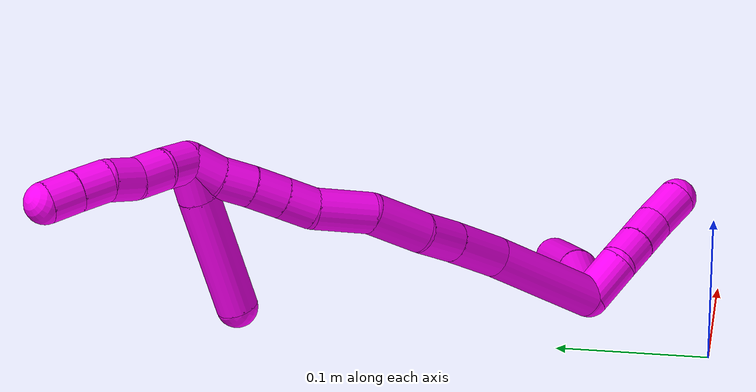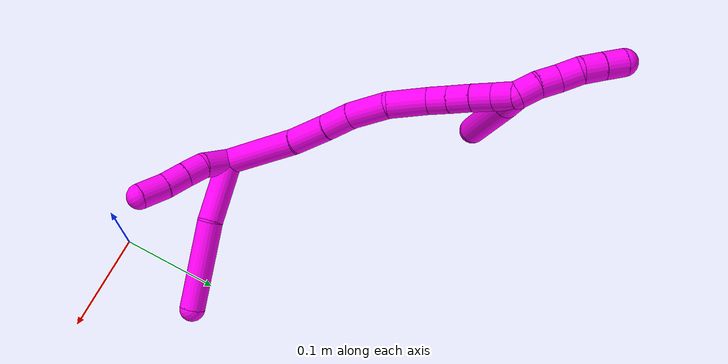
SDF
<sdf version="1.7">
 <world name="default">
  <model name="10">
   <static>0</static>
   <link name="10">
    <collision name="collision-cylinder-e_1_2_8">
     <pose>0.023339 0.011251 -0.017123 -2.56024 0.850349 -1.97391</pose>
     <geometry><cylinder><radius>0.0125</radius><length>0.062113</length></cylinder></geometry>
     <surface>
      <friction><ode><mu>1.16</mu><mu2>1.16</mu2><slip1>0</slip1><slip2>0</slip2></ode></friction>
      <contact><ode><kp>1e+06</kp><kd>1</kd><max_vel>0</max_vel><min_depth>0.001</min_depth></ode></contact>
     </surface>
    </collision>
    <visual name="visual-cylinder-e_1_2_8">
     <pose>0.023339 0.011251 -0.017123 -2.56024 0.850349 -1.97391</pose>
     <geometry><cylinder><radius>0.0125</radius><length>0.062113</length></cylinder></geometry>
     <material><ambient>1 0 0.964706 1</ambient></material>
    </visual>
    <collision name="collision-cylinder-e_2_8_6">
     <pose>0.074282 0.045495 -0.059553 -2.40411 0.679172 -1.48124</pose>
     <geometry><cylinder><radius>0.0125</radius><length>0.087887</length></cylinder></geometry>
     <surface>
      <friction><ode><mu>1.16</mu><mu2>1.16</mu2><slip1>0</slip1><slip2>0</slip2></ode></friction>
      <contact><ode><kp>1e+06</kp><kd>1</kd><max_vel>0</max_vel><min_depth>0.001</min_depth></ode></contact>
     </surface>
    </collision>
    <visual name="visual-cylinder-e_2_8_6">
     <pose>0.074282 0.045495 -0.059553 -2.40411 0.679172 -1.48124</pose>
     <geometry><cylinder><radius>0.0125</radius><length>0.087887</length></cylinder></geometry>
     <material><ambient>1 0 0.964706 1</ambient></material>
    </visual>
    <collision name="collision-cylinder-e_1_2_9">
     <pose>0.00872 -0.009925 -0.006586 2.15663 0.631934 1.09441</pose>
     <geometry><cylinder><radius>0.0125</radius><length>0.029525</length></cylinder></geometry>
     <surface>
      <friction><ode><mu>1.16</mu><mu2>1.16</mu2><slip1>0</slip1><slip2>0</slip2></ode></friction>
      <contact><ode><kp>1e+06</kp><kd>1</kd><max_vel>0</max_vel><min_depth>0.001</min_depth></ode></contact>
     </surface>
    </collision>
    <visual name="visual-cylinder-e_1_2_9">
     <pose>0.00872 -0.009925 -0.006586 2.15663 0.631934 1.09441</pose>
     <geometry><cylinder><radius>0.0125</radius><length>0.029525</length></cylinder></geometry>
     <material><ambient>1 0 0.964706 1</ambient></material>
    </visual>
    <collision name="collision-cylinder-e_2_9_10">
     <pose>0.024397 -0.023997 -0.019883 2.58818 0.722716 1.85282</pose>
     <geometry><cylinder><radius>0.0125</radius><length>0.021036</length></cylinder></geometry>
     <surface>
      <friction><ode><mu>1.16</mu><mu2>1.16</mu2><slip1>0</slip1><slip2>0</slip2></ode></friction>
      <contact><ode><kp>1e+06</kp><kd>1</kd><max_vel>0</max_vel><min_depth>0.001</min_depth></ode></contact>
     </surface>
    </collision>
    <visual name="visual-cylinder-e_2_9_10">
     <pose>0.024397 -0.023997 -0.019883 2.58818 0.722716 1.85282</pose>
     <geometry><cylinder><radius>0.0125</radius><length>0.021036</length></cylinder></geometry>
     <material><ambient>1 0 0.964706 1</ambient></material>
    </visual>
    <collision name="collision-cylinder-e_3_10_11">
     <pose>0.038876 -0.032245 -0.033792 2.62362 0.737148 1.93911</pose>
     <geometry><cylinder><radius>0.0125</radius><length>0.022379</length></cylinder></geometry>
     <surface>
      <friction><ode><mu>1.16</mu><mu2>1.16</mu2><slip1>0</slip1><slip2>0</slip2></ode></friction>
      <contact><ode><kp>1e+06</kp><kd>1</kd><max_vel>0</max_vel><min_depth>0.001</min_depth></ode></contact>
     </surface>
    </collision>
    <visual name="visual-cylinder-e_3_10_11">
     <pose>0.038876 -0.032245 -0.033792 2.62362 0.737148 1.93911</pose>
     <geometry><cylinder><radius>0.0125</radius><length>0.022379</length></cylinder></geometry>
     <material><ambient>1 0 0.964706 1</ambient></material>
    </visual>
    <collision name="collision-cylinder-e_4_11_5">
     <pose>0.054835 -0.042746 -0.04941 2.49173 0.673415 1.60912</pose>
     <geometry><cylinder><radius>0.0125</radius><length>0.02706</length></cylinder></geometry>
     <surface>
      <friction><ode><mu>1.16</mu><mu2>1.16</mu2><slip1>0</slip1><slip2>0</slip2></ode></friction>
      <contact><ode><kp>1e+06</kp><kd>1</kd><max_vel>0</max_vel><min_depth>0.001</min_depth></ode></contact>
     </surface>
    </collision>
    <visual name="visual-cylinder-e_4_11_5">
     <pose>0.054835 -0.042746 -0.04941 2.49173 0.673415 1.60912</pose>
     <geometry><cylinder><radius>0.0125</radius><length>0.02706</length></cylinder></geometry>
     <material><ambient>1 0 0.964706 1</ambient></material>
    </visual>
    <collision name="collision-cylinder-e_1_2_12">
     <pose>0.005729 0.003648 0.038321 -0.094919 0.147736 -0.00703</pose>
     <geometry><cylinder><radius>0.0125</radius><length>0.077837</length></cylinder></geometry>
     <surface>
      <friction><ode><mu>1.16</mu><mu2>1.16</mu2><slip1>0</slip1><slip2>0</slip2></ode></friction>
      <contact><ode><kp>1e+06</kp><kd>1</kd><max_vel>0</max_vel><min_depth>0.001</min_depth></ode></contact>
     </surface>
    </collision>
    <visual name="visual-cylinder-e_1_2_12">
     <pose>0.005729 0.003648 0.038321 -0.094919 0.147736 -0.00703</pose>
     <geometry><cylinder><radius>0.0125</radius><length>0.077837</length></cylinder></geometry>
     <material><ambient>1 0 0.964706 1</ambient></material>
    </visual>
    <collision name="collision-cylinder-e_2_12_13">
     <pose>0.01193 0.008341 0.095008 -0.056799 0.025669 -0.000729</pose>
     <geometry><cylinder><radius>0.0125</radius><length>0.036802</length></cylinder></geometry>
     <surface>
      <friction><ode><mu>1.16</mu><mu2>1.16</mu2><slip1>0</slip1><slip2>0</slip2></ode></friction>
      <contact><ode><kp>1e+06</kp><kd>1</kd><max_vel>0</max_vel><min_depth>0.001</min_depth></ode></contact>
     </surface>
    </collision>
    <visual name="visual-cylinder-e_2_12_13">
     <pose>0.01193 0.008341 0.095008 -0.056799 0.025669 -0.000729</pose>
     <geometry><cylinder><radius>0.0125</radius><length>0.036802</length></cylinder></geometry>
     <material><ambient>1 0 0.964706 1</ambient></material>
    </visual>
    <collision name="collision-cylinder-e_3_13_14">
     <pose>0.011992 0.010139 0.126873 -0.055772 -0.030344 0.000846</pose>
     <geometry><cylinder><radius>0.0125</radius><length>0.027053</length></cylinder></geometry>
     <surface>
      <friction><ode><mu>1.16</mu><mu2>1.16</mu2><slip1>0</slip1><slip2>0</slip2></ode></friction>
      <contact><ode><kp>1e+06</kp><kd>1</kd><max_vel>0</max_vel><min_depth>0.001</min_depth></ode></contact>
     </surface>
    </collision>
    <visual name="visual-cylinder-e_3_13_14">
     <pose>0.011992 0.010139 0.126873 -0.055772 -0.030344 0.000846</pose>
     <geometry><cylinder><radius>0.0125</radius><length>0.027053</length></cylinder></geometry>
     <material><ambient>1 0 0.964706 1</ambient></material>
    </visual>
    <collision name="collision-cylinder-e_4_14_15">
     <pose>0.01414 0.013339 0.159267 -0.128781 0.133502 -0.008621</pose>
     <geometry><cylinder><radius>0.0125</radius><length>0.038447</length></cylinder></geometry>
     <surface>
      <friction><ode><mu>1.16</mu><mu2>1.16</mu2><slip1>0</slip1><slip2>0</slip2></ode></friction>
      <contact><ode><kp>1e+06</kp><kd>1</kd><max_vel>0</max_vel><min_depth>0.001</min_depth></ode></contact>
     </surface>
    </collision>
    <visual name="visual-cylinder-e_4_14_15">
     <pose>0.01414 0.013339 0.159267 -0.128781 0.133502 -0.008621</pose>
     <geometry><cylinder><radius>0.0125</radius><length>0.038447</length></cylinder></geometry>
     <material><ambient>1 0 0.964706 1</ambient></material>
    </visual>
    <collision name="collision-cylinder-e_5_15_16">
     <pose>0.017572 0.023207 0.195378 -0.406956 0.046531 -0.009603</pose>
     <geometry><cylinder><radius>0.0125</radius><length>0.037535</length></cylinder></geometry>
     <surface>
      <friction><ode><mu>1.16</mu><mu2>1.16</mu2><slip1>0</slip1><slip2>0</slip2></ode></friction>
      <contact><ode><kp>1e+06</kp><kd>1</kd><max_vel>0</max_vel><min_depth>0.001</min_depth></ode></contact>
     </surface>
    </collision>
    <visual name="visual-cylinder-e_5_15_16">
     <pose>0.017572 0.023207 0.195378 -0.406956 0.046531 -0.009603</pose>
     <geometry><cylinder><radius>0.0125</radius><length>0.037535</length></cylinder></geometry>
     <material><ambient>1 0 0.964706 1</ambient></material>
    </visual>
    <collision name="collision-cylinder-e_6_16_17">
     <pose>0.021094 0.033313 0.221937 -0.279882 0.266054 -0.037695</pose>
     <geometry><cylinder><radius>0.0125</radius><length>0.020152</length></cylinder></geometry>
     <surface>
      <friction><ode><mu>1.16</mu><mu2>1.16</mu2><slip1>0</slip1><slip2>0</slip2></ode></friction>
      <contact><ode><kp>1e+06</kp><kd>1</kd><max_vel>0</max_vel><min_depth>0.001</min_depth></ode></contact>
     </surface>
    </collision>
    <visual name="visual-cylinder-e_6_16_17">
     <pose>0.021094 0.033313 0.221937 -0.279882 0.266054 -0.037695</pose>
     <geometry><cylinder><radius>0.0125</radius><length>0.020152</length></cylinder></geometry>
     <material><ambient>1 0 0.964706 1</ambient></material>
    </visual>
    <collision name="collision-cylinder-e_7_17_18">
     <pose>0.026396 0.038789 0.241079 -0.277472 0.254751 -0.035761</pose>
     <geometry><cylinder><radius>0.0125</radius><length>0.021054</length></cylinder></geometry>
     <surface>
      <friction><ode><mu>1.16</mu><mu2>1.16</mu2><slip1>0</slip1><slip2>0</slip2></ode></friction>
      <contact><ode><kp>1e+06</kp><kd>1</kd><max_vel>0</max_vel><min_depth>0.001</min_depth></ode></contact>
     </surface>
    </collision>
    <visual name="visual-cylinder-e_7_17_18">
     <pose>0.026396 0.038789 0.241079 -0.277472 0.254751 -0.035761</pose>
     <geometry><cylinder><radius>0.0125</radius><length>0.021054</length></cylinder></geometry>
     <material><ambient>1 0 0.964706 1</ambient></material>
    </visual>
    <collision name="collision-cylinder-e_8_18_19">
     <pose>0.031383 0.04478 0.260287 -0.327857 0.230602 -0.03831</pose>
     <geometry><cylinder><radius>0.0125</radius><length>0.02042</length></cylinder></geometry>
     <surface>
      <friction><ode><mu>1.16</mu><mu2>1.16</mu2><slip1>0</slip1><slip2>0</slip2></ode></friction>
      <contact><ode><kp>1e+06</kp><kd>1</kd><max_vel>0</max_vel><min_depth>0.001</min_depth></ode></contact>
     </surface>
    </collision>
    <visual name="visual-cylinder-e_8_18_19">
     <pose>0.031383 0.04478 0.260287 -0.327857 0.230602 -0.03831</pose>
     <geometry><cylinder><radius>0.0125</radius><length>0.02042</length></cylinder></geometry>
     <material><ambient>1 0 0.964706 1</ambient></material>
    </visual>
    <collision name="collision-cylinder-e_9_19_1">
     <pose>0.037333 0.050014 0.279178 -0.211178 0.356934 -0.038231</pose>
     <geometry><cylinder><radius>0.0125</radius><length>0.020698</length></cylinder></geometry>
     <surface>
      <friction><ode><mu>1.16</mu><mu2>1.16</mu2><slip1>0</slip1><slip2>0</slip2></ode></friction>
      <contact><ode><kp>1e+06</kp><kd>1</kd><max_vel>0</max_vel><min_depth>0.001</min_depth></ode></contact>
     </surface>
    </collision>
    <visual name="visual-cylinder-e_9_19_1">
     <pose>0.037333 0.050014 0.279178 -0.211178 0.356934 -0.038231</pose>
     <geometry><cylinder><radius>0.0125</radius><length>0.020698</length></cylinder></geometry>
     <material><ambient>1 0 0.964706 1</ambient></material>
    </visual>
    <collision name="collision-cylinder-e_1_1_20">
     <pose>0.035081 0.057926 0.280489 -2.5178 -0.527734 1.39489</pose>
     <geometry><cylinder><radius>0.0125</radius><length>0.023303</length></cylinder></geometry>
     <surface>
      <friction><ode><mu>1.16</mu><mu2>1.16</mu2><slip1>0</slip1><slip2>0</slip2></ode></friction>
      <contact><ode><kp>1e+06</kp><kd>1</kd><max_vel>0</max_vel><min_depth>0.001</min_depth></ode></contact>
     </surface>
    </collision>
    <visual name="visual-cylinder-e_1_1_20">
     <pose>0.035081 0.057926 0.280489 -2.5178 -0.527734 1.39489</pose>
     <geometry><cylinder><radius>0.0125</radius><length>0.023303</length></cylinder></geometry>
     <material><ambient>1 0 0.964706 1</ambient></material>
    </visual>
    <collision name="collision-cylinder-e_2_20_4">
     <pose>0.00983 0.081961 0.244655 -2.56083 -0.529929 1.47447</pose>
     <geometry><cylinder><radius>0.0125</radius><length>0.076697</length></cylinder></geometry>
     <surface>
      <friction><ode><mu>1.16</mu><mu2>1.16</mu2><slip1>0</slip1><slip2>0</slip2></ode></friction>
      <contact><ode><kp>1e+06</kp><kd>1</kd><max_vel>0</max_vel><min_depth>0.001</min_depth></ode></contact>
     </surface>
    </collision>
    <visual name="visual-cylinder-e_2_20_4">
     <pose>0.00983 0.081961 0.244655 -2.56083 -0.529929 1.47447</pose>
     <geometry><cylinder><radius>0.0125</radius><length>0.076697</length></cylinder></geometry>
     <material><ambient>1 0 0.964706 1</ambient></material>
    </visual>
    <collision name="collision-cylinder-e_1_1_21">
     <pose>0.037041 0.054515 0.297528 -0.271507 -0.401416 0.055565</pose>
     <geometry><cylinder><radius>0.0125</radius><length>0.02</length></cylinder></geometry>
     <surface>
      <friction><ode><mu>1.16</mu><mu2>1.16</mu2><slip1>0</slip1><slip2>0</slip2></ode></friction>
      <contact><ode><kp>1e+06</kp><kd>1</kd><max_vel>0</max_vel><min_depth>0.001</min_depth></ode></contact>
     </surface>
    </collision>
    <visual name="visual-cylinder-e_1_1_21">
     <pose>0.037041 0.054515 0.297528 -0.271507 -0.401416 0.055565</pose>
     <geometry><cylinder><radius>0.0125</radius><length>0.02</length></cylinder></geometry>
     <material><ambient>1 0 0.964706 1</ambient></material>
    </visual>
    <collision name="collision-cylinder-e_2_21_22">
     <pose>0.029588 0.061246 0.314718 -0.473392 -0.362489 0.088351</pose>
     <geometry><cylinder><radius>0.0125</radius><length>0.02</length></cylinder></geometry>
     <surface>
      <friction><ode><mu>1.16</mu><mu2>1.16</mu2><slip1>0</slip1><slip2>0</slip2></ode></friction>
      <contact><ode><kp>1e+06</kp><kd>1</kd><max_vel>0</max_vel><min_depth>0.001</min_depth></ode></contact>
     </surface>
    </collision>
    <visual name="visual-cylinder-e_2_21_22">
     <pose>0.029588 0.061246 0.314718 -0.473392 -0.362489 0.088351</pose>
     <geometry><cylinder><radius>0.0125</radius><length>0.02</length></cylinder></geometry>
     <material><ambient>1 0 0.964706 1</ambient></material>
    </visual>
    <collision name="collision-cylinder-e_3_22_23">
     <pose>0.024061 0.068166 0.332474 -0.274522 -0.199406 0.027634</pose>
     <geometry><cylinder><radius>0.0125</radius><length>0.02</length></cylinder></geometry>
     <surface>
      <friction><ode><mu>1.16</mu><mu2>1.16</mu2><slip1>0</slip1><slip2>0</slip2></ode></friction>
      <contact><ode><kp>1e+06</kp><kd>1</kd><max_vel>0</max_vel><min_depth>0.001</min_depth></ode></contact>
     </surface>
    </collision>
    <visual name="visual-cylinder-e_3_22_23">
     <pose>0.024061 0.068166 0.332474 -0.274522 -0.199406 0.027634</pose>
     <geometry><cylinder><radius>0.0125</radius><length>0.02</length></cylinder></geometry>
     <material><ambient>1 0 0.964706 1</ambient></material>
    </visual>
    <collision name="collision-cylinder-e_4_23_24">
     <pose>0.019023 0.075995 0.349904 -0.574155 -0.310675 0.0924</pose>
     <geometry><cylinder><radius>0.0125</radius><length>0.02</length></cylinder></geometry>
     <surface>
      <friction><ode><mu>1.16</mu><mu2>1.16</mu2><slip1>0</slip1><slip2>0</slip2></ode></friction>
      <contact><ode><kp>1e+06</kp><kd>1</kd><max_vel>0</max_vel><min_depth>0.001</min_depth></ode></contact>
     </surface>
    </collision>
    <visual name="visual-cylinder-e_4_23_24">
     <pose>0.019023 0.075995 0.349904 -0.574155 -0.310675 0.0924</pose>
     <geometry><cylinder><radius>0.0125</radius><length>0.02</length></cylinder></geometry>
     <material><ambient>1 0 0.964706 1</ambient></material>
    </visual>
    <collision name="collision-cylinder-e_5_24_3">
     <pose>0.012799 0.086554 0.365704 -0.604183 -0.322329 0.101239</pose>
     <geometry><cylinder><radius>0.0125</radius><length>0.02</length></cylinder></geometry>
     <surface>
      <friction><ode><mu>1.16</mu><mu2>1.16</mu2><slip1>0</slip1><slip2>0</slip2></ode></friction>
      <contact><ode><kp>1e+06</kp><kd>1</kd><max_vel>0</max_vel><min_depth>0.001</min_depth></ode></contact>
     </surface>
    </collision>
    <visual name="visual-cylinder-e_5_24_3">
     <pose>0.012799 0.086554 0.365704 -0.604183 -0.322329 0.101239</pose>
     <geometry><cylinder><radius>0.0125</radius><length>0.02</length></cylinder></geometry>
     <material><ambient>1 0 0.964706 1</ambient></material>
    </visual>
    <collision name="collision-sphere-3">
     <pose>0.009631 0.091943 0.37351 0 -0 0</pose>
     <geometry><sphere><radius>0.0125</radius></sphere></geometry>
     <surface>
      <friction><ode><mu>1.16</mu><mu2>1.16</mu2><slip1>0</slip1><slip2>0</slip2></ode></friction>
      <contact><ode><kp>1e+06</kp><kd>1</kd><max_vel>0</max_vel><min_depth>0.001</min_depth></ode></contact>
     </surface>
    </collision>
    <visual name="visual-sphere-3">
     <pose>0.009631 0.091943 0.37351 0 -0 0</pose>
     <geometry><sphere><radius>0.0125</radius></sphere></geometry>
     <material><ambient>1 0 0.964706 1</ambient></material>
    </visual>
    <collision name="collision-sphere-24">
     <pose>0.015966 0.081166 0.357898 0 -0 0</pose>
     <geometry><sphere><radius>0.0125</radius></sphere></geometry>
     <surface>
      <friction><ode><mu>1.16</mu><mu2>1.16</mu2><slip1>0</slip1><slip2>0</slip2></ode></friction>
      <contact><ode><kp>1e+06</kp><kd>1</kd><max_vel>0</max_vel><min_depth>0.001</min_depth></ode></contact>
     </surface>
    </collision>
    <visual name="visual-sphere-24">
     <pose>0.015966 0.081166 0.357898 0 -0 0</pose>
     <geometry><sphere><radius>0.0125</radius></sphere></geometry>
     <material><ambient>1 0 0.964706 1</ambient></material>
    </visual>
    <collision name="collision-sphere-23">
     <pose>0.02208 0.070823 0.341909 0 -0 0</pose>
     <geometry><sphere><radius>0.0125</radius></sphere></geometry>
     <surface>
      <friction><ode><mu>1.16</mu><mu2>1.16</mu2><slip1>0</slip1><slip2>0</slip2></ode></friction>
      <contact><ode><kp>1e+06</kp><kd>1</kd><max_vel>0</max_vel><min_depth>0.001</min_depth></ode></contact>
     </surface>
    </collision>
    <visual name="visual-sphere-23">
     <pose>0.02208 0.070823 0.341909 0 -0 0</pose>
     <geometry><sphere><radius>0.0125</radius></sphere></geometry>
     <material><ambient>1 0 0.964706 1</ambient></material>
    </visual>
    <collision name="collision-sphere-22">
     <pose>0.026042 0.065509 0.323039 0 -0 0</pose>
     <geometry><sphere><radius>0.0125</radius></sphere></geometry>
     <surface>
      <friction><ode><mu>1.16</mu><mu2>1.16</mu2><slip1>0</slip1><slip2>0</slip2></ode></friction>
      <contact><ode><kp>1e+06</kp><kd>1</kd><max_vel>0</max_vel><min_depth>0.001</min_depth></ode></contact>
     </surface>
    </collision>
    <visual name="visual-sphere-22">
     <pose>0.026042 0.065509 0.323039 0 -0 0</pose>
     <geometry><sphere><radius>0.0125</radius></sphere></geometry>
     <material><ambient>1 0 0.964706 1</ambient></material>
    </visual>
    <collision name="collision-sphere-21">
     <pose>0.033134 0.056984 0.306396 0 -0 0</pose>
     <geometry><sphere><radius>0.0125</radius></sphere></geometry>
     <surface>
      <friction><ode><mu>1.16</mu><mu2>1.16</mu2><slip1>0</slip1><slip2>0</slip2></ode></friction>
      <contact><ode><kp>1e+06</kp><kd>1</kd><max_vel>0</max_vel><min_depth>0.001</min_depth></ode></contact>
     </surface>
    </collision>
    <visual name="visual-sphere-21">
     <pose>0.033134 0.056984 0.306396 0 -0 0</pose>
     <geometry><sphere><radius>0.0125</radius></sphere></geometry>
     <material><ambient>1 0 0.964706 1</ambient></material>
    </visual>
    <collision name="collision-sphere-4">
     <pose>-0.009554 0.100115 0.216992 0 -0 0</pose>
     <geometry><sphere><radius>0.0125</radius></sphere></geometry>
     <surface>
      <friction><ode><mu>1.16</mu><mu2>1.16</mu2><slip1>0</slip1><slip2>0</slip2></ode></friction>
      <contact><ode><kp>1e+06</kp><kd>1</kd><max_vel>0</max_vel><min_depth>0.001</min_depth></ode></contact>
     </surface>
    </collision>
    <visual name="visual-sphere-4">
     <pose>-0.009554 0.100115 0.216992 0 -0 0</pose>
     <geometry><sphere><radius>0.0125</radius></sphere></geometry>
     <material><ambient>1 0 0.964706 1</ambient></material>
    </visual>
    <collision name="collision-sphere-20">
     <pose>0.029214 0.063806 0.272319 0 -0 0</pose>
     <geometry><sphere><radius>0.0125</radius></sphere></geometry>
     <surface>
      <friction><ode><mu>1.16</mu><mu2>1.16</mu2><slip1>0</slip1><slip2>0</slip2></ode></friction>
      <contact><ode><kp>1e+06</kp><kd>1</kd><max_vel>0</max_vel><min_depth>0.001</min_depth></ode></contact>
     </surface>
    </collision>
    <visual name="visual-sphere-20">
     <pose>0.029214 0.063806 0.272319 0 -0 0</pose>
     <geometry><sphere><radius>0.0125</radius></sphere></geometry>
     <material><ambient>1 0 0.964706 1</ambient></material>
    </visual>
    <collision name="collision-sphere-11">
     <pose>0.046397 -0.036347 -0.04099 0 -0 0</pose>
     <geometry><sphere><radius>0.0125</radius></sphere></geometry>
     <surface>
      <friction><ode><mu>1.16</mu><mu2>1.16</mu2><slip1>0</slip1><slip2>0</slip2></ode></friction>
      <contact><ode><kp>1e+06</kp><kd>1</kd><max_vel>0</max_vel><min_depth>0.001</min_depth></ode></contact>
     </surface>
    </collision>
    <visual name="visual-sphere-11">
     <pose>0.046397 -0.036347 -0.04099 0 -0 0</pose>
     <geometry><sphere><radius>0.0125</radius></sphere></geometry>
     <material><ambient>1 0 0.964706 1</ambient></material>
    </visual>
    <collision name="collision-sphere-10">
     <pose>0.031354 -0.028143 -0.026594 0 -0 0</pose>
     <geometry><sphere><radius>0.0125</radius></sphere></geometry>
     <surface>
      <friction><ode><mu>1.16</mu><mu2>1.16</mu2><slip1>0</slip1><slip2>0</slip2></ode></friction>
      <contact><ode><kp>1e+06</kp><kd>1</kd><max_vel>0</max_vel><min_depth>0.001</min_depth></ode></contact>
     </surface>
    </collision>
    <visual name="visual-sphere-10">
     <pose>0.031354 -0.028143 -0.026594 0 -0 0</pose>
     <geometry><sphere><radius>0.0125</radius></sphere></geometry>
     <material><ambient>1 0 0.964706 1</ambient></material>
    </visual>
    <collision name="collision-sphere-6">
     <pose>0.101885 0.068486 -0.084861 0 -0 0</pose>
     <geometry><sphere><radius>0.0125</radius></sphere></geometry>
     <surface>
      <friction><ode><mu>1.16</mu><mu2>1.16</mu2><slip1>0</slip1><slip2>0</slip2></ode></friction>
      <contact><ode><kp>1e+06</kp><kd>1</kd><max_vel>0</max_vel><min_depth>0.001</min_depth></ode></contact>
     </surface>
    </collision>
    <visual name="visual-sphere-6">
     <pose>0.101885 0.068486 -0.084861 0 -0 0</pose>
     <geometry><sphere><radius>0.0125</radius></sphere></geometry>
     <material><ambient>1 0 0.964706 1</ambient></material>
    </visual>
    <collision name="collision-sphere-9">
     <pose>0.01744 -0.019851 -0.013172 0 -0 0</pose>
     <geometry><sphere><radius>0.0125</radius></sphere></geometry>
     <surface>
      <friction><ode><mu>1.16</mu><mu2>1.16</mu2><slip1>0</slip1><slip2>0</slip2></ode></friction>
      <contact><ode><kp>1e+06</kp><kd>1</kd><max_vel>0</max_vel><min_depth>0.001</min_depth></ode></contact>
     </surface>
    </collision>
    <visual name="visual-sphere-9">
     <pose>0.01744 -0.019851 -0.013172 0 -0 0</pose>
     <geometry><sphere><radius>0.0125</radius></sphere></geometry>
     <material><ambient>1 0 0.964706 1</ambient></material>
    </visual>
    <collision name="collision-sphere-2">
     <geometry><sphere><radius>0.0125</radius></sphere></geometry>
     <surface>
      <friction><ode><mu>1.16</mu><mu2>1.16</mu2><slip1>0</slip1><slip2>0</slip2></ode></friction>
      <contact><ode><kp>1e+06</kp><kd>1</kd><max_vel>0</max_vel><min_depth>0.001</min_depth></ode></contact>
     </surface>
    </collision>
    <visual name="visual-sphere-2">
     <geometry><sphere><radius>0.0125</radius></sphere></geometry>
     <material><ambient>1 0 0.964706 1</ambient></material>
    </visual>
    <collision name="collision-sphere-19">
     <pose>0.033717 0.047981 0.269697 0 -0 0</pose>
     <geometry><sphere><radius>0.0125</radius></sphere></geometry>
     <surface>
      <friction><ode><mu>1.16</mu><mu2>1.16</mu2><slip1>0</slip1><slip2>0</slip2></ode></friction>
      <contact><ode><kp>1e+06</kp><kd>1</kd><max_vel>0</max_vel><min_depth>0.001</min_depth></ode></contact>
     </surface>
    </collision>
    <visual name="visual-sphere-19">
     <pose>0.033717 0.047981 0.269697 0 -0 0</pose>
     <geometry><sphere><radius>0.0125</radius></sphere></geometry>
     <material><ambient>1 0 0.964706 1</ambient></material>
    </visual>
    <collision name="collision-sphere-8">
     <pose>0.046679 0.022503 -0.034246 0 -0 0</pose>
     <geometry><sphere><radius>0.0125</radius></sphere></geometry>
     <surface>
      <friction><ode><mu>1.16</mu><mu2>1.16</mu2><slip1>0</slip1><slip2>0</slip2></ode></friction>
      <contact><ode><kp>1e+06</kp><kd>1</kd><max_vel>0</max_vel><min_depth>0.001</min_depth></ode></contact>
     </surface>
    </collision>
    <visual name="visual-sphere-8">
     <pose>0.046679 0.022503 -0.034246 0 -0 0</pose>
     <geometry><sphere><radius>0.0125</radius></sphere></geometry>
     <material><ambient>1 0 0.964706 1</ambient></material>
    </visual>
    <collision name="collision-sphere-5">
     <pose>0.063273 -0.049146 -0.057831 0 -0 0</pose>
     <geometry><sphere><radius>0.0125</radius></sphere></geometry>
     <surface>
      <friction><ode><mu>1.16</mu><mu2>1.16</mu2><slip1>0</slip1><slip2>0</slip2></ode></friction>
      <contact><ode><kp>1e+06</kp><kd>1</kd><max_vel>0</max_vel><min_depth>0.001</min_depth></ode></contact>
     </surface>
    </collision>
    <visual name="visual-sphere-5">
     <pose>0.063273 -0.049146 -0.057831 0 -0 0</pose>
     <geometry><sphere><radius>0.0125</radius></sphere></geometry>
     <material><ambient>1 0 0.964706 1</ambient></material>
    </visual>
    <collision name="collision-sphere-12">
     <pose>0.011458 0.007297 0.076643 0 -0 0</pose>
     <geometry><sphere><radius>0.0125</radius></sphere></geometry>
     <surface>
      <friction><ode><mu>1.16</mu><mu2>1.16</mu2><slip1>0</slip1><slip2>0</slip2></ode></friction>
      <contact><ode><kp>1e+06</kp><kd>1</kd><max_vel>0</max_vel><min_depth>0.001</min_depth></ode></contact>
     </surface>
    </collision>
    <visual name="visual-sphere-12">
     <pose>0.011458 0.007297 0.076643 0 -0 0</pose>
     <geometry><sphere><radius>0.0125</radius></sphere></geometry>
     <material><ambient>1 0 0.964706 1</ambient></material>
    </visual>
    <collision name="collision-sphere-13">
     <pose>0.012402 0.009385 0.113374 0 -0 0</pose>
     <geometry><sphere><radius>0.0125</radius></sphere></geometry>
     <surface>
      <friction><ode><mu>1.16</mu><mu2>1.16</mu2><slip1>0</slip1><slip2>0</slip2></ode></friction>
      <contact><ode><kp>1e+06</kp><kd>1</kd><max_vel>0</max_vel><min_depth>0.001</min_depth></ode></contact>
     </surface>
    </collision>
    <visual name="visual-sphere-13">
     <pose>0.012402 0.009385 0.113374 0 -0 0</pose>
     <geometry><sphere><radius>0.0125</radius></sphere></geometry>
     <material><ambient>1 0 0.964706 1</ambient></material>
    </visual>
    <collision name="collision-sphere-14">
     <pose>0.011581 0.010893 0.140372 0 -0 0</pose>
     <geometry><sphere><radius>0.0125</radius></sphere></geometry>
     <surface>
      <friction><ode><mu>1.16</mu><mu2>1.16</mu2><slip1>0</slip1><slip2>0</slip2></ode></friction>
      <contact><ode><kp>1e+06</kp><kd>1</kd><max_vel>0</max_vel><min_depth>0.001</min_depth></ode></contact>
     </surface>
    </collision>
    <visual name="visual-sphere-14">
     <pose>0.011581 0.010893 0.140372 0 -0 0</pose>
     <geometry><sphere><radius>0.0125</radius></sphere></geometry>
     <material><ambient>1 0 0.964706 1</ambient></material>
    </visual>
    <collision name="collision-sphere-15">
     <pose>0.016699 0.015786 0.178161 0 -0 0</pose>
     <geometry><sphere><radius>0.0125</radius></sphere></geometry>
     <surface>
      <friction><ode><mu>1.16</mu><mu2>1.16</mu2><slip1>0</slip1><slip2>0</slip2></ode></friction>
      <contact><ode><kp>1e+06</kp><kd>1</kd><max_vel>0</max_vel><min_depth>0.001</min_depth></ode></contact>
     </surface>
    </collision>
    <visual name="visual-sphere-15">
     <pose>0.016699 0.015786 0.178161 0 -0 0</pose>
     <geometry><sphere><radius>0.0125</radius></sphere></geometry>
     <material><ambient>1 0 0.964706 1</ambient></material>
    </visual>
    <collision name="collision-sphere-16">
     <pose>0.018445 0.030627 0.212594 0 -0 0</pose>
     <geometry><sphere><radius>0.0125</radius></sphere></geometry>
     <surface>
      <friction><ode><mu>1.16</mu><mu2>1.16</mu2><slip1>0</slip1><slip2>0</slip2></ode></friction>
      <contact><ode><kp>1e+06</kp><kd>1</kd><max_vel>0</max_vel><min_depth>0.001</min_depth></ode></contact>
     </surface>
    </collision>
    <visual name="visual-sphere-16">
     <pose>0.018445 0.030627 0.212594 0 -0 0</pose>
     <geometry><sphere><radius>0.0125</radius></sphere></geometry>
     <material><ambient>1 0 0.964706 1</ambient></material>
    </visual>
    <collision name="collision-sphere-17">
     <pose>0.023743 0.035998 0.231281 0 -0 0</pose>
     <geometry><sphere><radius>0.0125</radius></sphere></geometry>
     <surface>
      <friction><ode><mu>1.16</mu><mu2>1.16</mu2><slip1>0</slip1><slip2>0</slip2></ode></friction>
      <contact><ode><kp>1e+06</kp><kd>1</kd><max_vel>0</max_vel><min_depth>0.001</min_depth></ode></contact>
     </surface>
    </collision>
    <visual name="visual-sphere-17">
     <pose>0.023743 0.035998 0.231281 0 -0 0</pose>
     <geometry><sphere><radius>0.0125</radius></sphere></geometry>
     <material><ambient>1 0 0.964706 1</ambient></material>
    </visual>
    <collision name="collision-sphere-18">
     <pose>0.029049 0.04158 0.250876 0 -0 0</pose>
     <geometry><sphere><radius>0.0125</radius></sphere></geometry>
     <surface>
      <friction><ode><mu>1.16</mu><mu2>1.16</mu2><slip1>0</slip1><slip2>0</slip2></ode></friction>
      <contact><ode><kp>1e+06</kp><kd>1</kd><max_vel>0</max_vel><min_depth>0.001</min_depth></ode></contact>
     </surface>
    </collision>
    <visual name="visual-sphere-18">
     <pose>0.029049 0.04158 0.250876 0 -0 0</pose>
     <geometry><sphere><radius>0.0125</radius></sphere></geometry>
     <material><ambient>1 0 0.964706 1</ambient></material>
    </visual>
    <collision name="collision-sphere-1">
     <pose>0.040949 0.052046 0.28866 0 -0 0</pose>
     <geometry><sphere><radius>0.0125</radius></sphere></geometry>
     <surface>
      <friction><ode><mu>1.16</mu><mu2>1.16</mu2><slip1>0</slip1><slip2>0</slip2></ode></friction>
      <contact><ode><kp>1e+06</kp><kd>1</kd><max_vel>0</max_vel><min_depth>0.001</min_depth></ode></contact>
     </surface>
    </collision>
    <visual name="visual-sphere-1">
     <pose>0.040949 0.052046 0.28866 0 -0 0</pose>
     <geometry><sphere><radius>0.0125</radius></sphere></geometry>
     <material><ambient>1 0 0.964706 1</ambient></material>
    </visual>
    <inertial>
     <pose>0.026575 0.029698 0.124685 0 -0 0</pose>
     <mass>0.75</mass>
     <inertia><ixx>7e-05</ixx><ixy>0</ixy><ixz>0</ixz><iyy>0.000119</iyy><iyz>0</iyz><izz>-0.0001</izz></inertia>
    </inertial>
   </link>
   <pose>-0.102286 0.070893 0.092035 -0.902607 -0.509189 0.414381</pose>
  </model>
 </world>
</sdf>
